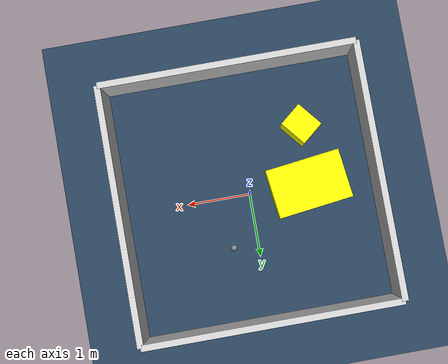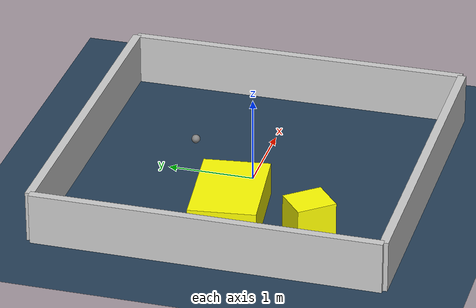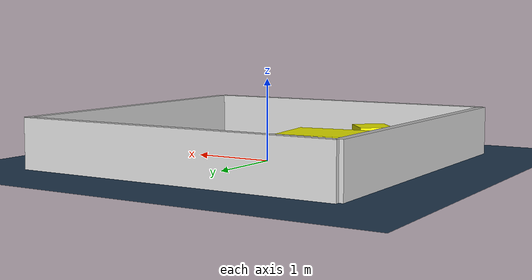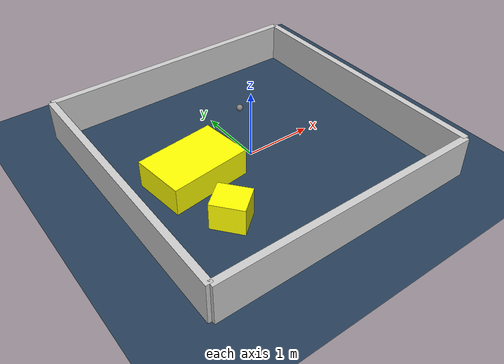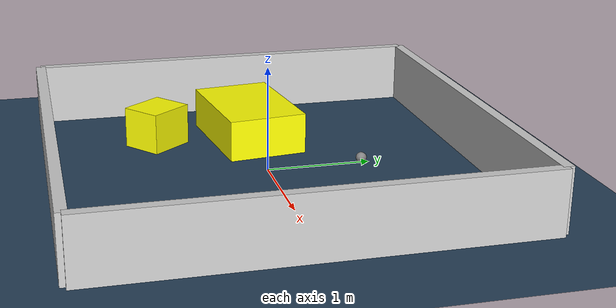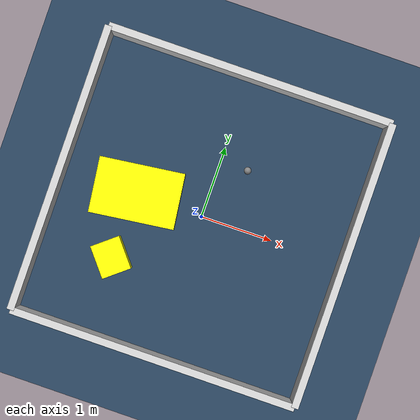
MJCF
<?xml version="1.0" ?>
<mujoco model="generated_environment">
  <option timestep="0.01" integrator="RK4" cone="elliptic"/>
  <default>
    <geom density="1"/>
  </default>
  <asset>
    <texture builtin="gradient" height="3072" rgb1="0.3 0.5 0.7" rgb2="0 0 0" type="skybox" width="512"/>
    <texture builtin="checker" height="300" mark="edge" markrgb="0.8 0.8 0.8" name="groundplane" rgb1="0.2 0.3 0.4" rgb2="0.1 0.2 0.3" type="2d" width="300"/>
    <material name="groundplane" reflectance="0.2" texrepeat="5 5" texture="groundplane" texuniform="true"/>
    <material name="robot" rgba="0.0 1.0 0.0 1"/>
  </asset>
  <worldbody>
    <light dir="0 0 -1" directional="true" pos="0 0 1.5"/>
    <geom condim="4" friction="1.0 0.005 0.001" material="groundplane" name="floor" size="0 0 0.05" type="plane"/>
    <body name="walls">
      <geom name="wall_1" condim="4" pos="-2.0 0.0 0.3" rgba="0.800000011920929 0.800000011920929 0.800000011920929 1.0" size="0.05 2.0 0.3" type="box"/>
      <geom name="wall_2" condim="4" pos="2.0 0.0 0.3" rgba="0.800000011920929 0.800000011920929 0.800000011920929 1.0" size="0.05 2.0 0.3" type="box"/>
      <geom name="wall_3" condim="4" pos="0.0 -2.0 0.3" rgba="0.800000011920929 0.800000011920929 0.800000011920929 1.0" size="2.0 0.05 0.3" type="box"/>
      <geom name="wall_4" condim="4" pos="0.0 2.0 0.3" rgba="0.800000011920929 0.800000011920929 0.800000011920929 1.0" size="2.0 0.05 0.3" type="box"/>
    </body>
    <body name="robot">
      <joint name="joint_x" type="slide" pos="0 0 0" axis="1 0 0"/>
      <joint name="joint_y" type="slide" pos="0 0 0" axis="0 1 0"/>
      <geom name="robot" type="sphere" pos="0.38515414097170053 0.7939544078317131 0.2" size="0.05" mass="5." friction="1.0 0.005 0.0001" condim="4"/>
      <site name="sensor_ball"/>
    </body>
    <body name="obstacle_1_movable">
      <geom name="obstacle_1_movable" condim="4" pos="-0.928382470544154 0.017974472984289447 0.2" euler="0 0 7.050233207448255" friction="1.0 0.005 0.001" rgba="1 1 0 1" size="0.5873224450756751 0.3854128649155866 0.2" type="box" mass="0.1"/>
      <joint type="free"/>
    </body>
    <body name="obstacle_2_movable">
      <geom name="obstacle_2_movable" condim="4" pos="-0.9761164887611012 -0.9150873584346523 0.2" euler="0 0 309.285180018982" friction="1.0 0.005 0.001" rgba="1 1 0 1" size="0.23378773519928564 0.20653258060419427 0.2" type="box" mass="0.1"/>
      <joint type="free"/>
    </body>
  </worldbody>
  <actuator>
    <motor name="actuator_x" joint="joint_x" gear="1" ctrlrange="-1 1"/>
    <motor name="actuator_y" joint="joint_y" gear="1" ctrlrange="-1 1"/>
  </actuator>
</mujoco>
